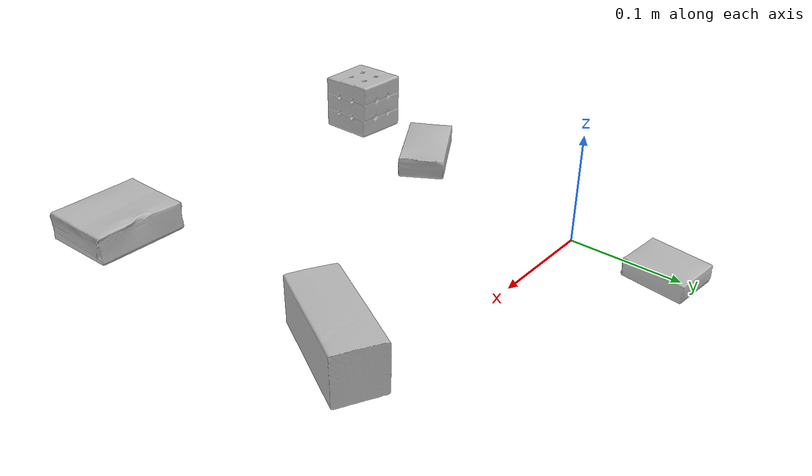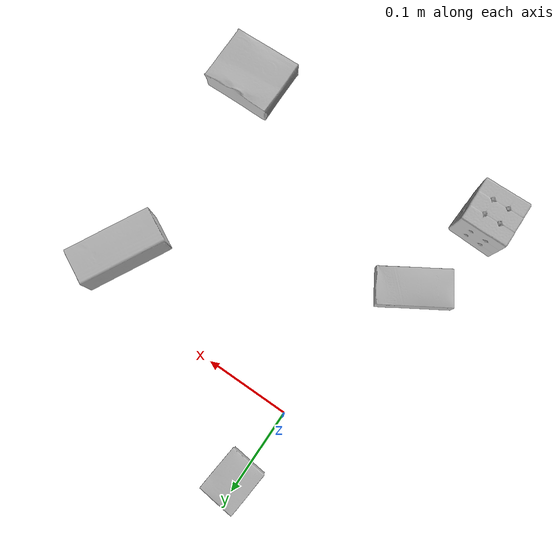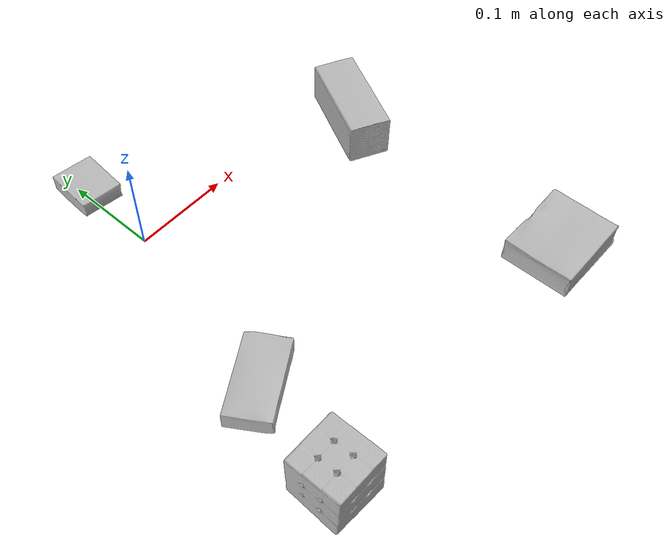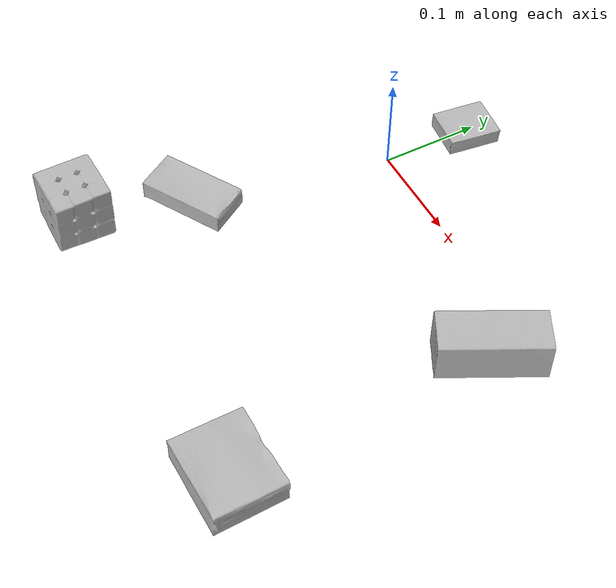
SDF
<sdf version="1.4">
  <world name="default">
    <light name="light1" type="point">
      <pose>0 0 1 0 0 0</pose>
      <diffuse>3 3 3 1</diffuse>
      <specular>3 3 3 1</specular>
    </light>
    <light name="light2" type="point">
      <pose>0 0.5 2 0 0 0</pose>
      <diffuse>1 1 1 1</diffuse>
      <specular>1 1 1 1</specular>
    </light>
    <light name="light3" type="point">
      <pose>0 0.5 2 0 0 0</pose>
      <diffuse>3 3 3 1</diffuse>
      <specular>3 3 3 1</specular>
    </light>
    <scene>
      <ambient>0.7 0.7 0.7</ambient>
    </scene>
    <model name="box1">
      <link name="link_box1">
        <collision name="default">
          <geometry>
            <mesh>
              <uri>model://gelatin_box/collision_meshes/collision.obj</uri>
              <scale>1.0 1.0 1.0</scale>
            </mesh>
          </geometry>
          <surface>
            <friction>
              <ode>
                <mu>0.5</mu>
                <mu2>0.5</mu2>
              </ode>
            </friction>
          <contact>
        <ode>
            <max_vel>0</max_vel>
            <min_depth>0.0001</min_depth>
            <kp>1e8</kp>
        </ode>
    </contact></surface>
        </collision>
        <visual name="default">
          <geometry>
            <mesh>
              <uri>model://gelatin_box/visual_meshes/visual.dae</uri>
              <scale>1.0 1.0 1.0</scale>
            </mesh>
          </geometry>
        </visual>
        <inertial>
          <mass>0.15228882431983948</mass>
          <pose>0.0004319618456065655 0.00011156871914863586 -0.0003640321083366871 -0.00105037218966889 -0.004755816826754503 0.0164405576082189</pose>
          <inertia>
            <ixx>0.00010750349</ixx>
            <iyy>7.678918e-05</iyy>
            <izz>0.00016364428</izz>
            <ixy>0</ixy>
            <ixz>0</ixz>
            <iyz>0</iyz>
          </inertia>
        </inertial>
      </link>
      <pose>0.25530746579170227 -0.30597102642059326 0.015168314799666405 0.00559665754157644 -0.007303669047251767 1.5711672111767743</pose>
    </model>
    <model name="box2">
      <link name="link_box2">
        <collision name="default">
          <geometry>
            <mesh>
              <uri>model://rubiks_cube/collision_meshes/collision.obj</uri>
              <scale>1.0 1.0 1.0</scale>
            </mesh>
          </geometry>
          <surface>
            <friction>
              <ode>
                <mu>0.5</mu>
                <mu2>0.5</mu2>
              </ode>
            </friction>
          <contact>
        <ode>
            <max_vel>0</max_vel>
            <min_depth>0.0001</min_depth>
            <kp>1e8</kp>
        </ode>
    </contact></surface>
        </collision>
        <visual name="default">
          <geometry>
            <mesh>
              <uri>model://rubiks_cube/visual_meshes/visual.dae</uri>
              <scale>1.0 1.0 1.0</scale>
            </mesh>
          </geometry>
        </visual>
        <inertial>
          <mass>0.18699690699577332</mass>
          <pose>2.6721041649580002e-05 5.2569666877388954e-05 -7.264316082000732e-06 -0.054672785544912415 -0.09814058570479768 -0.03445363054661819</pose>
          <inertia>
            <ixx>0.00010332834</ixx>
            <iyy>0.00010284647</iyy>
            <izz>0.000104184575</izz>
            <ixy>0</ixy>
            <ixz>0</ixz>
            <iyz>0</iyz>
          </inertia>
        </inertial>
      </link>
      <pose>-0.07008690387010574 -0.3072035014629364 0.028678998351097107 -1.6686278120913649e-06 5.72005927057996e-07 -1.571513760615185</pose>
    </model>
    <model name="box3">
      <link name="link_box3">
        <collision name="default">
          <geometry>
            <mesh>
              <uri>model://pudding_box/collision_meshes/collision.obj</uri>
              <scale>0.5 0.5 0.5</scale>
            </mesh>
          </geometry>
          <surface>
            <friction>
              <ode>
                <mu>0.5</mu>
                <mu2>0.5</mu2>
              </ode>
            </friction>
          <contact>
        <ode>
            <max_vel>0</max_vel>
            <min_depth>0.0001</min_depth>
            <kp>1e8</kp>
        </ode>
    </contact></surface>
        </collision>
        <visual name="default">
          <geometry>
            <mesh>
              <uri>model://pudding_box/visual_meshes/visual.dae</uri>
              <scale>0.5 0.5 0.5</scale>
            </mesh>
          </geometry>
        </visual>
        <inertial>
          <mass>0.04129739850759506</mass>
          <pose>0.00024474109522998333 0.00040339428232982755 -0.0002594413817860186 0.005213100432551209 -0.006603796827212886 0.020079819580048088</pose>
          <inertia>
            <ixx>1.1671145e-05</ixx>
            <iyy>7.852431e-06</iyy>
            <izz>1.7235501e-05</izz>
            <ixy>0</ixy>
            <ixz>0</ixz>
            <iyz>0</iyz>
          </inertia>
        </inertial>
      </link>
      <pose>0.00556336110457778 0.08848803490400314 0.00986290629953146 0.022348486010217824 -0.011391788979818577 3.037705426399692</pose>
    </model>
    <model name="box4">
      <link name="link_box4">
        <collision name="default">
          <geometry>
            <mesh>
              <uri>model://sugar_box/collision_meshes/collision.obj</uri>
              <scale>0.5 0.5 0.5</scale>
            </mesh>
          </geometry>
          <surface>
            <friction>
              <ode>
                <mu>0.5</mu>
                <mu2>0.5</mu2>
              </ode>
            </friction>
          <contact>
        <ode>
            <max_vel>0</max_vel>
            <min_depth>0.0001</min_depth>
            <kp>1e8</kp>
        </ode>
    </contact></surface>
        </collision>
        <visual name="default">
          <geometry>
            <mesh>
              <uri>model://sugar_box/visual_meshes/visual.dae</uri>
              <scale>0.5 0.5 0.5</scale>
            </mesh>
          </geometry>
        </visual>
        <inertial>
          <mass>0.09136254340410233</mass>
          <pose>0.0005171863595023751 1.924554817378521e-05 -0.00018182402709499002 -0.00040462606744182556 0.0010506635219056535 0.0026153790218759383</pose>
          <inertia>
            <ixx>1.9030753e-05</ixx>
            <iyy>6.15113e-05</iyy>
            <izz>7.363638e-05</izz>
            <ixy>0</ixy>
            <ixz>0</ixz>
            <iyz>0</iyz>
          </inertia>
        </inertial>
      </link>
      <pose>-0.04332408681511879 -0.19636626541614532 0.011399304494261742 0.0007754847452991317 -0.02343267303501131 -2.600062833233474</pose>
    </model>
    <model name="box5">
      <link name="link_box5">
        <collision name="default">
          <geometry>
            <mesh>
              <uri>model://wood_block/collision_meshes/collision.obj</uri>
              <scale>0.5 0.5 0.5</scale>
            </mesh>
          </geometry>
          <surface>
            <friction>
              <ode>
                <mu>0.5</mu>
                <mu2>0.5</mu2>
              </ode>
            </friction>
          <contact>
        <ode>
            <max_vel>0</max_vel>
            <min_depth>0.0001</min_depth>
            <kp>1e8</kp>
        </ode>
    </contact></surface>
        </collision>
        <visual name="default">
          <geometry>
            <mesh>
              <uri>model://wood_block/visual_meshes/visual.dae</uri>
              <scale>0.5 0.5 0.5</scale>
            </mesh>
          </geometry>
        </visual>
        <inertial>
          <mass>0.2591090798377991</mass>
          <pose>-2.9066577553749084e-06 -0.00028540470520965755 0.00013204290007706732 -0.05220937491622274 -0.005192696068464721 -0.006861378365732138</pose>
          <inertia>
            <ixx>8.6681786e-05</ixx>
            <iyy>0.00027382775</iyy>
            <izz>0.0002728035</izz>
            <ixy>0</ixy>
            <ixz>0</ixz>
            <iyz>0</iyz>
          </inertia>
        </inertial>
      </link>
      <pose>0.25425073504447937 -0.04481973871588707 0.022629259154200554 -0.005208444164688222 0.005718694699149548 -2.0466890514910965</pose>
    </model>
  <physics type="ode">
      <max_contacts>50</max_contacts>
      <ode>
        <solver>
          <type>quick</type>
          <iters>75</iters>
        </solver>
        <constraints>
          <contact_max_correcting_vel>0</contact_max_correcting_vel>
          <contact_surface_layer>0</contact_surface_layer>
        </constraints>
      </ode>
    </physics></world>
</sdf>
